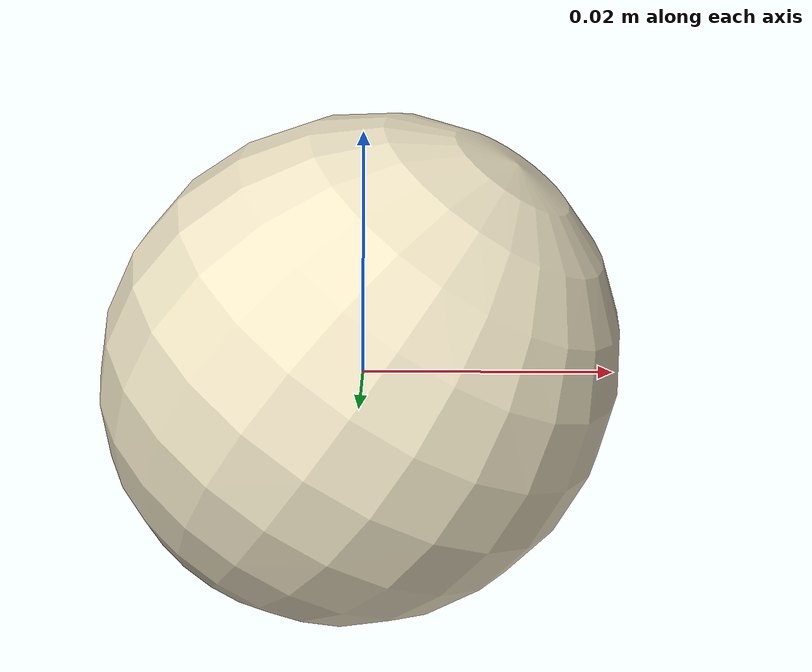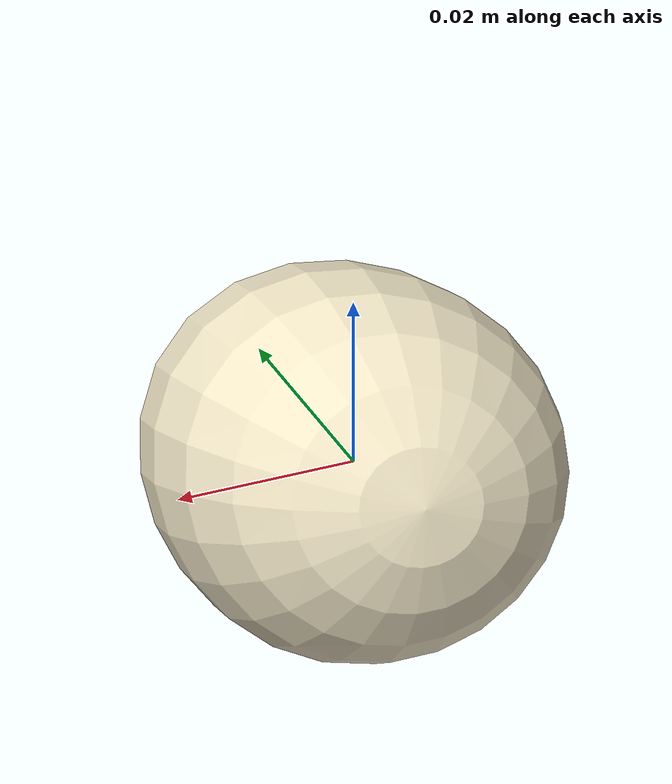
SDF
<?xml version="1.0"?>
<sdf version="1.7">
  <model name="cotton_pick_A_15">
    <static>false</static>
    <allow_auto_disable>false</allow_auto_disable>
    <link name="cotton_pick_A_15_link">
      <gravity>false</gravity>
      <self_collide>false</self_collide>
      <inertial>
        <mass>0.01200</mass>
        <inertia>
          <ixx>0.00000154</ixx>
          <iyy>0.00000154</iyy>
          <izz>0.00000154</izz>
          <ixy>0</ixy>
          <ixz>0</ixz>
          <iyz>0</iyz>
        </inertia>
      </inertial>
      <visual name="cotton_pick_A_15_visual">
        <geometry>
          <mesh>
            <uri>model://cotton_pick_A_15/meshes/cotton_pick_A_15.dae</uri>
          </mesh>
        </geometry>
      </visual>
      <collision name="cotton_pick_A_15_sphere_collision">
        <geometry>
          <sphere>
            <radius>0.01793</radius>
          </sphere>
        </geometry>
        <surface>
          <friction>
            <ode>
              <mu>1.6</mu>
              <mu2>1.6</mu2>
            </ode>
          </friction>
          <contact>
            <ode>
              <kp>8000</kp>
              <kd>80</kd>
            </ode>
          </contact>
        </surface>
      </collision>
    </link>
  </model>
</sdf>
